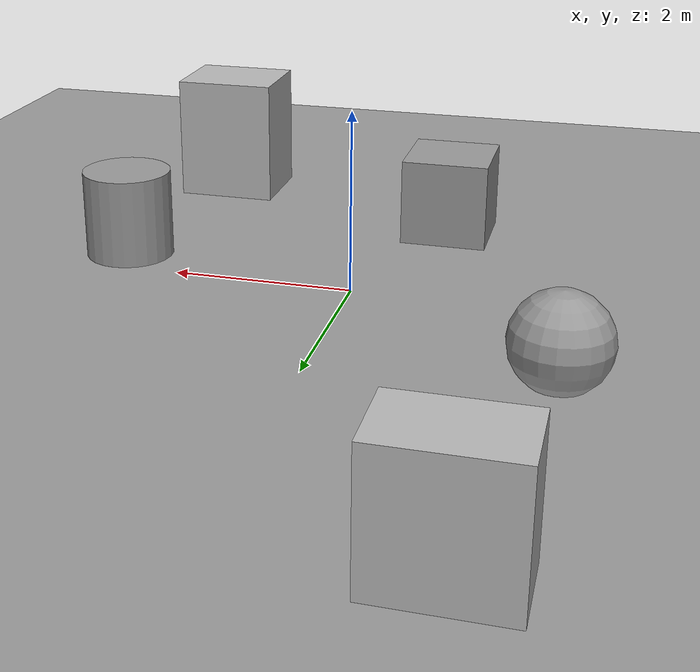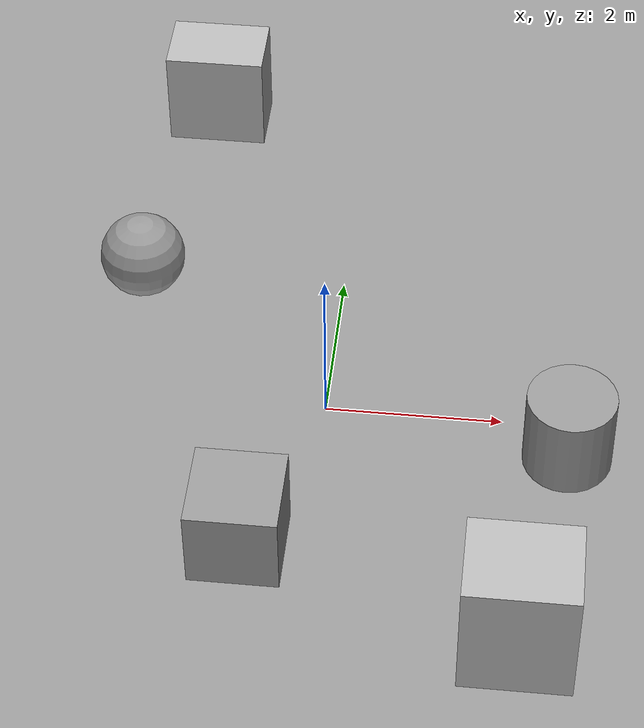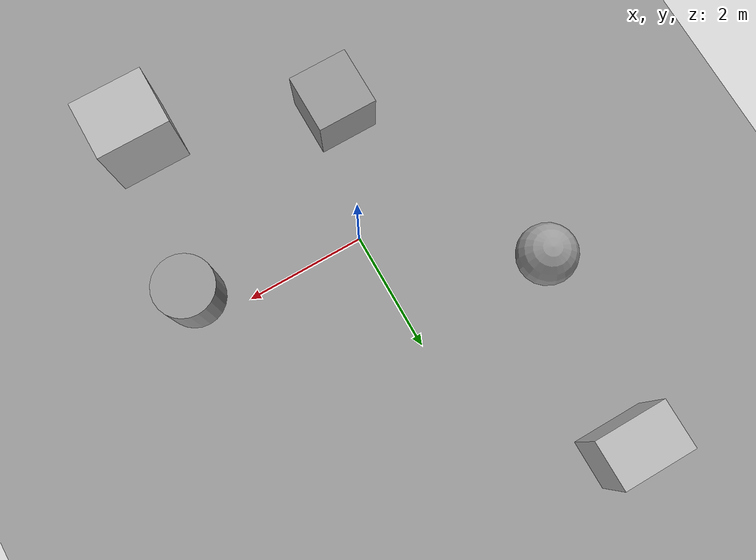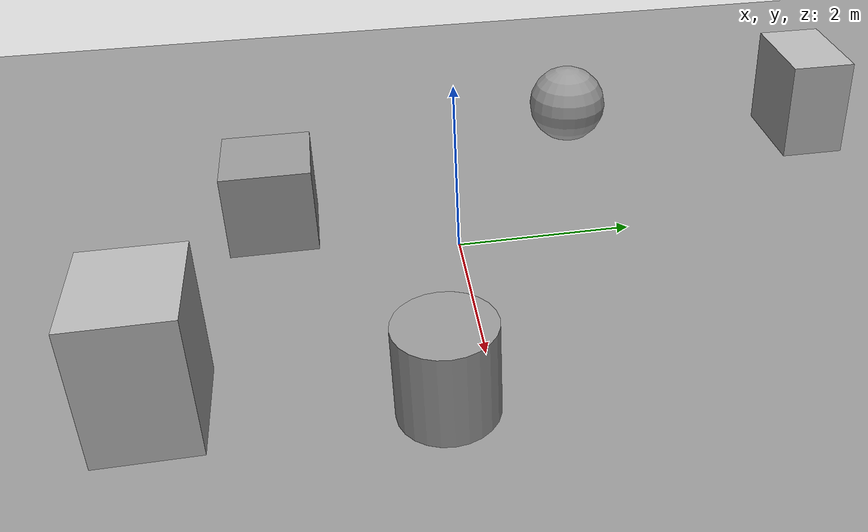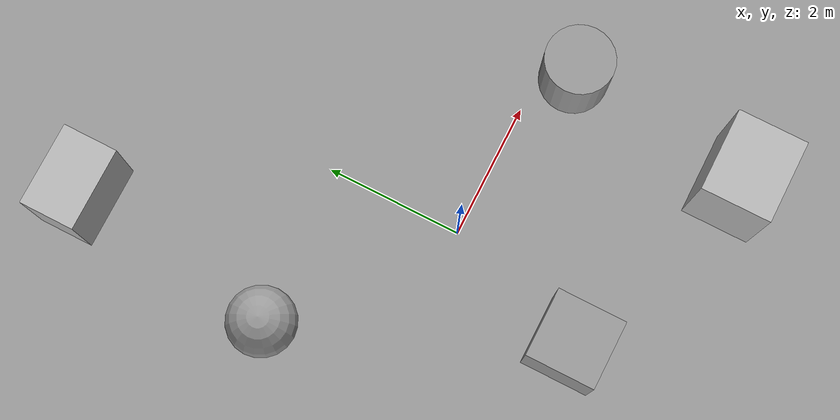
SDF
<sdf version="1.6">
 <world name="default">
  <include><uri>model://sun</uri></include>
  <include><uri>model://ground_plane</uri></include>
  <model name="ground_plane1">
   <static>1</static>
   <link name="link">
    <collision name="collision">
     <geometry><plane><normal>0 0 1</normal><size>100 100</size></plane></geometry>
     <surface>
      <contact><collide_bitmask>65535</collide_bitmask></contact>
      <friction><ode><mu>100</mu><mu2>50</mu2></ode></friction>
     </surface>
    </collision>
    <visual name="visual">
     <cast_shadows>0</cast_shadows>
     <geometry><plane><normal>0 0 1</normal><size>100 100</size></plane></geometry>
     <material>
      <script><uri>file://media/materials/scripts/gazebo.material</uri><name>Gazebo/Grey</name></script>
     </material>
    </visual>
   </link>
  </model>
  <gravity>0 0 -9.8</gravity>
  <magnetic_field>6e-06 2.3e-05 -4.2e-05</magnetic_field>
  <atmosphere type="adiabatic"/>
  <scene><ambient>0.4 0.4 0.4 1</ambient><background>0.7 0.7 0.7 1</background><shadows>1</shadows></scene>
  <spherical_coordinates>
   <surface_model>EARTH_WGS84</surface_model>
   <latitude_deg>0</latitude_deg>
   <longitude_deg>0</longitude_deg>
   <elevation>0</elevation>
   <heading_deg>0</heading_deg>
  </spherical_coordinates>
  <model name="unit_box">
   <pose>-0.719443 -2.08681 0.499995 0 1e-05 0</pose>
   <link name="link">
    <inertial>
     <mass>1</mass>
     <inertia>
      <ixx>0.166667</ixx>
      <ixy>0</ixy>
      <ixz>0</ixz>
      <iyy>0.166667</iyy>
      <iyz>0</iyz>
      <izz>0.166667</izz>
     </inertia>
    </inertial>
    <collision name="collision"><geometry><box><size>1 1 1</size></box></geometry></collision>
    <visual name="visual">
     <geometry><box><size>1 1 1</size></box></geometry>
     <material>
      <script><name>Gazebo/Grey</name><uri>file://media/materials/scripts/gazebo.material</uri></script>
     </material>
    </visual>
   </link>
  </model>
  <model name="unit_sphere">
   <pose>-2.37623 1.7859 0.5 0 -0 0</pose>
   <link name="link">
    <inertial>
     <mass>1</mass>
     <inertia><ixx>0.1</ixx><ixy>0</ixy><ixz>0</ixz><iyy>0.1</iyy><iyz>0</iyz><izz>0.1</izz></inertia>
    </inertial>
    <collision name="collision"><geometry><sphere><radius>0.5</radius></sphere></geometry></collision>
    <visual name="visual">
     <geometry><sphere><radius>0.5</radius></sphere></geometry>
     <material>
      <script><name>Gazebo/Grey</name><uri>file://media/materials/scripts/gazebo.material</uri></script>
     </material>
    </visual>
   </link>
  </model>
  <model name="unit_cylinder">
   <pose>2.75035 -0.467737 0.499997 3e-06 4e-06 -0</pose>
   <link name="link">
    <inertial>
     <mass>1</mass>
     <inertia><ixx>0.145833</ixx><ixy>0</ixy><ixz>0</ixz><iyy>0.145833</iyy><iyz>0</iyz><izz>0.125</izz></inertia>
    </inertial>
    <collision name="collision">
     <geometry><cylinder><radius>0.5</radius><length>1</length></cylinder></geometry>
    </collision>
    <visual name="visual">
     <geometry><cylinder><radius>0.5</radius><length>1</length></cylinder></geometry>
     <material>
      <script><name>Gazebo/Grey</name><uri>file://media/materials/scripts/gazebo.material</uri></script>
     </material>
    </visual>
   </link>
  </model>
  <model name="Big box">
   <pose>2.32732 -3.16022 0.749855 0 -0.000235 0</pose>
   <static>0</static>
   <link name="link">
    <inertial>
     <mass>40</mass>
     <inertia><ixx>1</ixx><ixy>0</ixy><ixz>0</ixz><iyy>1</iyy><iyz>0</iyz><izz>1</izz></inertia>
    </inertial>
    <collision name="collision">
     <geometry><box><size>1.2 0.8 1.5</size></box></geometry>
     <surface><contact><ode><max_vel>0.1</max_vel><min_depth>0.001</min_depth></ode></contact></surface>
    </collision>
    <visual name="visual"><geometry><mesh><uri>model://big_box/meshes/big_box.dae</uri></mesh></geometry></visual>
   </link>
  </model>
  <model name="big_box3">
   <pose>-1.88867 4.87998 0.62495 0 6.9e-05 0</pose>
   <static>0</static>
   <link name="link">
    <inertial>
     <mass>40</mass>
     <inertia><ixx>1</ixx><ixy>0</ixy><ixz>0</ixz><iyy>1</iyy><iyz>0</iyz><izz>1</izz></inertia>
    </inertial>
    <collision name="collision">
     <geometry><box><size>1.2 0.8 1.25</size></box></geometry>
     <surface><contact><ode><max_vel>0.1</max_vel><min_depth>0.001</min_depth></ode></contact></surface>
    </collision>
    <visual name="visual">
     <geometry><mesh><uri>model://big_box3/meshes/big_box.dae</uri></mesh></geometry>
    </visual>
   </link>
  </model>
  <physics name="default_physics" default="0" type="ode">
   <max_step_size>0.001</max_step_size>
   <real_time_factor>1</real_time_factor>
   <real_time_update_rate>1000</real_time_update_rate>
  </physics>
 </world>
</sdf>
